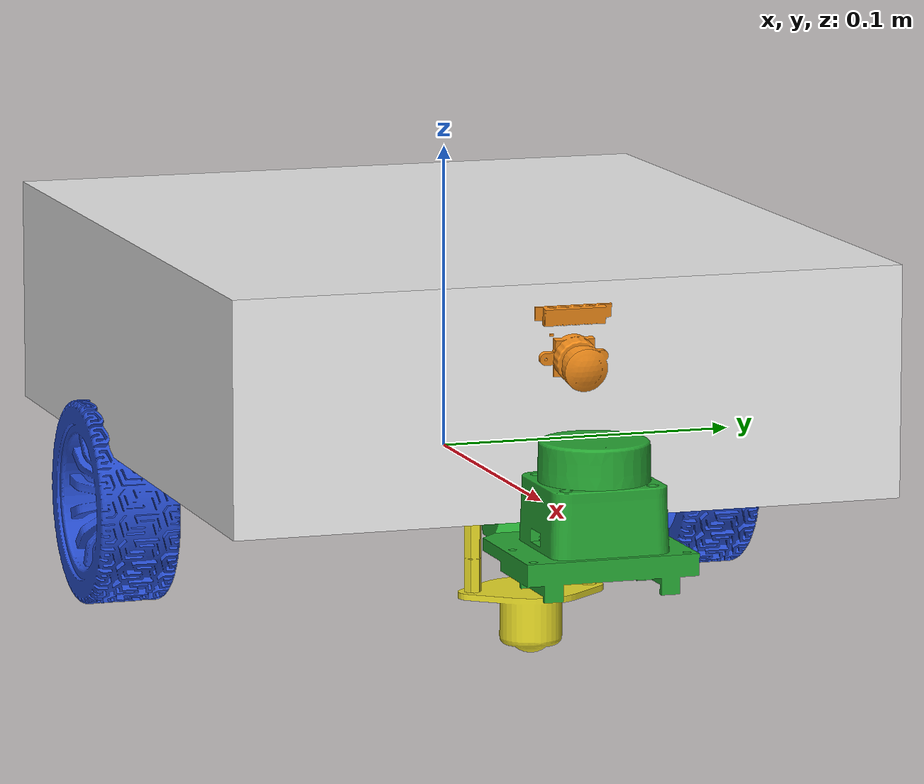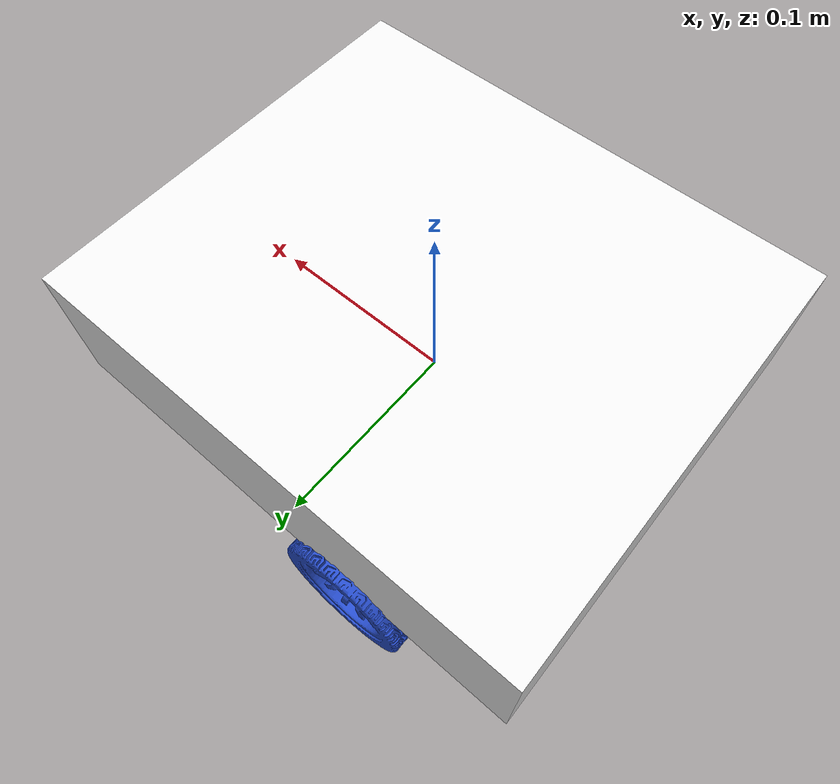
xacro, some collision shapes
<?xml version="1.0"?>
<robot xmlns:xacro="http://www.ros.org/wiki/xacro"  name="sevillabot">

    <xacro:arg name="use_ros2_control" default="true" />
    <xacro:arg name="sim_mode" default="false"/>

    <!-- PROPERTIES -->
    <xacro:include filename="properties.xacro" />

    <!-- CORE ROBOT DESCRIPTION -->
    <xacro:include filename="robot_core.xacro" />

    <!-- toggle between ROS2 CONTROL -->
    <xacro:if value ="$(arg use_ros2_control)">
        <xacro:include filename="ros2_control.xacro" />
    </xacro:if>

    <!-- and GAZEBO -->
    <xacro:unless value ="$(arg use_ros2_control)">
        <xacro:include filename="gazebo_control.xacro" />
    </xacro:unless>

    <!-- LIDAR -->
    <xacro:include filename="lidar.xacro" />

    <!-- CAMERA -->
    <xacro:include filename="camera.xacro" />

</robot>

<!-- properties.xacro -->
<robot xmlns:xacro="http://www.ros.org/wiki/xacro" >

    <!-- box -->
    <xacro:property name="box_x" value="0.26"/> <!-- box length in m -->
    <xacro:property name="box_y" value="0.22"/> <!-- box width in m -->
    <xacro:property name="box_z" value="0.075"/> <!-- box height in m -->
    <xacro:property name="box_x_off" value="0.0"/> <!-- box x-offset in m -->
    <xacro:property name="box_z_off" value="0.0"/> <!-- box z-offset in m -->
    <xacro:property name="box_mass" value="1.7578"/> <!-- box mass in Kg -->

    <!-- wheels -->
    <xacro:property name="W_x" value="0.04"/> <!-- wheel axis x-offset from centre in m -->
    <xacro:property name="W_z" value="0.02"/> <!-- wheel axis z-offset from bottom in m -->
    <xacro:property name="W_y" value="0.102"/> <!-- wheel half separation in m -->
    <xacro:property name="W_D" value="0.065"/> <!-- wheel diameter in m -->
    <xacro:property name="W_h" value="0.026"/> <!-- wheel width in m -->
    <xacro:property name="W_mass" value="0.0454"/> <!-- wheel mass in Kg -->

    <!-- caster -->
    <xacro:property name="c_x" value="0.030"/> <!-- caster centre x-offset from edge in m -->
    <xacro:property name="c_z" value="0.056"/> <!-- caster contact z-offset from bottom in m -->
    <xacro:property name="c_x_off" value="0.090"/> <!-- caster mesh x-offset in m -->
    <xacro:property name="c_z_off" value="0.043"/> <!-- caster mesh z-offset in m -->
    <xacro:property name="c_D" value="0.016"/> <!-- caster diameter in m -->
    <xacro:property name="c_mass" value="0.0471"/> <!-- caster mass in Kg -->

    <!-- motors -->
    <xacro:property name="m_y" value="0.04"/> <!-- motor y-offset from centre in m -->
    <xacro:property name="m_h" value="0.06"/> <!-- motor length in m -->
    <xacro:property name="m_D" value="0.02"/> <!-- motor body diameter in m -->
    <xacro:property name="m_l" value="0.009"/> <!-- motor coupling length in m -->
    <xacro:property name="m_d" value="0.011"/> <!-- motor coupling diameter in m -->
    <xacro:property name="m_mass" value="0.05"/> <!-- motor mass in Kg -->

    <!--lidar -->
    <xacro:property name="L_x" value="0.109"/> <!-- Lidar x-offset in m -->
    <xacro:property name="L_z" value="-0.004"/> <!-- Lidar z-offset in m -->
    <xacro:property name="L_x_off" value="0.04"/> <!-- Lidar x-offset in m -->
    <xacro:property name="L_z_off" value="0.022"/> <!-- Lidar z-offset in m -->
    <xacro:property name="L_D" value="0.038"/> <!-- Lidar head diameter in m -->
    <xacro:property name="L_h" value="0.013"/> <!-- Lidar unit height in m -->
    <xacro:property name="L_mass" value="0.0715"/> <!-- Lidar mass in Kg -->

    <!--camera -->
    <xacro:property name="cam_x" value="0.127"/> <!-- Camera x-offset in m -->
    <xacro:property name="cam_z" value="0.05216"/> <!-- Camera z-offset in m -->
    <xacro:property name="cam_angle" value="${10*pi/180}"/> <!-- Camera down angle in radians -->
    <xacro:property name="cam_dx" value="0.006"/> <!-- Camera box thickness in m -->
    <xacro:property name="cam_dy" value="0.03"/> <!-- Camera box width in m -->
    <xacro:property name="cam_dz" value="0.02"/> <!-- Camera box height in m -->
    <xacro:property name="cam_mass" value="0.002"/> <!-- Camera mass in Kg -->

</robot>

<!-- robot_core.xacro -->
<robot xmlns:xacro="http://www.ros.org/wiki/xacro">

    <!-- MATERIALS -->
    <!-- white black light_gray dark_gray green blue red yellow orange -->

    <xacro:include filename="materials.xacro" />

    <!-- INERTIAL MACROS -->

    <xacro:include filename="inertial_macros.xacro" />

    <!-- BASE LINK -->

    <link name="base_link">
    </link>length

    <!-- BASE_FOOTPRINT LINK -->

    <joint name="base_footprint_joint" type="fixed">
        <parent link="base_link" />
        <child link="base_footprint" />
        <origin xyz="0 0 0" rpy="0 0 0" />
    </joint>

    <link name="base_footprint">
    </link>

    <!-- CHASSIS LINK -->

    <joint name="chassis_joint" type="fixed">
        <parent link="base_link" />
        <child link="chassis_link" />
        <origin xyz="0 0 0" />
    </joint>

    <link name="chassis_link">
        <visual>
            <geometry>
            	<mesh filename="file://$(find sevillabot)/meshes/ASSY_sevillabot_base.stl" scale="1.0e-3 1.0e-3 1.0e-3"/>
            </geometry>
            <origin xyz="${box_z_off} 0 ${box_z_off}" rpy="0 0 0"/>
            <material name="white" />
        </visual>

        <collision>
            <geometry>
                <box size="${box_x} ${box_y} ${box_z}" />
            </geometry>
            <origin xyz="0 0 ${box_z/2}" />
        </collision>

        <xacro:inertial_box mass="${box_mass}" x="${box_x}" y="${box_y}" z="${box_z}">
            <origin xyz="0 0 0" rpy="0 0 0" />
        </xacro:inertial_box>

    </link>

    <gazebo reference="chassis_link">
        <material>Gazebo/White</material>
    </gazebo>

    <!-- LEFT WHEEL LINK -->

    <joint name="left_wheel_joint" type="continuous">
        <parent link="base_link" />
        <child link="left_wheel_link" />
        <origin xyz="-${W_x} ${W_y} -${W_z}" rpy="0 0 ${pi/2}" />
        <axis xyz="1 0 0" />
    </joint>

    <link name="left_wheel_link">
        <visual>
            <geometry>
                <mesh filename="file://$(find sevillabot)/meshes/ASSY_Wheel.stl" scale="1.0e-3 1.0e-3 1.0e-3"/>
            </geometry>
            <material name="blue" />
        </visual>

        <collision>
            <geometry>
                <sphere radius="${W_D/2}" />
            </geometry>
        </collision>

        <xacro:inertial_cylinder mass="${W_mass}" radius="${W_D/2}" length="${W_h}">
            <origin xyz="0 0 0" rpy="${pi/2} 0 ${pi/2}" />
        </xacro:inertial_cylinder>

    </link>

    <gazebo reference="left_wheel_link">
        <material>Gazebo/Blue</material>
    </gazebo>

    <!-- RIGHT WHEEL LINK -->

    <joint name="right_wheel_joint" type="continuous">
        <parent link="base_link" />
        <child link="right_wheel_link" />
        <origin xyz="-${W_x} -${W_y} -${W_z}" rpy="0 0 -${pi/2}" />
        <axis xyz="-1 0 0" />
    </joint>

    <link name="right_wheel_link">
        <visual>
            <geometry>
                <!-- cylinder radius="${W_D/2}" length="${W_h}" / -->
                <mesh filename="file://$(find sevillabot)/meshes/ASSY_Wheel.stl" scale="1.0e-3 1.0e-3 1.0e-3"/>
            </geometry>
            <material name="blue" />
        </visual>

        <collision>
            <geometry>
                <sphere radius="${W_D/2}" />
            </geometry>
        </collision>

        <xacro:inertial_cylinder mass="${W_mass}" radius="${W_D/2}" length="${W_h}">
            <origin xyz="0 0 0" rpy="${pi/2} 0 ${pi/2}" />
        </xacro:inertial_cylinder>

    </link>

    <gazebo reference="right_wheel_link">
        <material>Gazebo/Blue</material>
    </gazebo>

    <!-- CASTER WHEEL LINK -->

    <joint name="caster_wheel_joint" type="fixed">
        <parent link="chassis_link" />
        <child link="caster_wheel_link" />
        <origin xyz="${c_x_off} 0 ${-c_z_off}" rpy = "0 0 0"  />
    </joint>

    <link name="caster_wheel_link">
        <visual>
            <geometry>
                <!-- sphere radius="${c_D/2}" / -->
                <mesh filename="file://$(find sevillabot)/meshes/ADDON_caster_wheel.stl" scale="1.0e-3 1.0e-3 1.0e-3"/>
            </geometry>
            <origin xyz="0 0 0" rpy = "0 0 0"  />
            <material name="yellow" />
        </visual>

        <collision>
            <origin xyz="0 0 0" rpy="0 0 0" />
            <geometry>
                <sphere radius="${c_D/2}" />
            </geometry>
        </collision>

        <xacro:inertial_sphere mass="${c_mass}" radius="${c_D/2}">
            <origin xyz="0 0 0" rpy="0 0 0" />
        </xacro:inertial_sphere>

    </link>

    <gazebo reference="caster_wheel_link">
        <material>Gazebo/Yellow</material>
        <mu1 value="0.0001" />
        <mu2 value="0.0001" />
    </gazebo>

</robot>

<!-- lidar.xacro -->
<robot xmlns:xacro="http://www.ros.org/wiki/xacro" >

    <joint name="lidar_joint" type="fixed">
        <parent link="chassis_link"/>
        <child link="lidar_link"/>
        <origin xyz="${L_x+L_x_off} 0 ${L_z+L_z_off}" rpy="0.0 0.0 0.0"/>
    </joint>

    <link name="lidar_link">
        <visual>
            <geometry>
                <mesh filename="file://$(find sevillabot)/meshes/ADDON_Lidar_assy.stl" scale="1.0e-3 1.0e-3 1.0e-3"/>
            </geometry>
            <origin xyz="${-L_x_off} 0 ${-L_z_off}" rpy="0.0 0.0 0.0"/>
            <material name="green" />
        </visual>

        <collision>
            <geometry>
                <cylinder radius="${L_D/2}" length="${L_h}" />
            </geometry>
            <origin xyz="0 0 0" rpy="0 0 0" />
        </collision>

        <xacro:inertial_cylinder mass="${L_mass}" radius="${L_D/2}" length="${L_h}">
            <origin xyz="0 0 0" rpy="0 0 0" />
        </xacro:inertial_cylinder>

    </link>

    <gazebo reference="lidar_link">

        <material>Gazebo/Green</material>

        <sensor name="lidar" type="ray">
            <pose> 0 0 0 0 0 0 </pose>
            <visualize> true </visualize> <!-- visualize laser rays -->
            <update_rate>10</update_rate>
            <ray>
                <scan>
                    <horizontal>
                        <samples>360</samples>
                        <resolution>1</resolution>
                        <min_angle>-3.14</min_angle>
                        <max_angle>3.14</max_angle>
                    </horizontal>
                </scan>
                <range>
                    <min>0.1</min>
                    <max>12</max>
                    <resolution>0.01</resolution>
                </range>
            </ray>
            <plugin name="lidar_controller" filename="libgazebo_ros_ray_sensor.so">
                <ros>
                    <argument>~/out:=scan</argument> <!-- topic -->
                </ros>
                <output_type>sensor_msgs/LaserScan</output_type>
                <frame_name>lidar_link</frame_name>
            </plugin>
        </sensor>

    </gazebo>

</robot>

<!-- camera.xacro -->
<robot xmlns:xacro="http://www.ros.org/wiki/xacro" >

    <joint name="camera_joint" type="fixed">
        <parent link="chassis_link"/>
        <child link="camera_link"/>
        <origin xyz="${cam_x} 0 ${cam_z}" rpy="0.0 ${cam_angle} 0.0"/>
    </joint>

    <link name="camera_link">
        <visual>
            <geometry>
                <mesh filename="file://$(find sevillabot)/meshes/ADDON_front_camera.stl" scale="1.0e-3 1.0e-3 1.0e-3"/>
            </geometry>
            <origin xyz="0 0 0" rpy="0.0 0.0 0.0"/>
            <material name="orange" />
        </visual>

    </link>

    <joint name="camera_optical_joint" type="fixed">
        <parent link="camera_link"/>
        <child link="camera_link_optical"/>
        <origin xyz="0 0 0" rpy="${-pi/2} 0 ${-pi/2}"/>
    </joint>

    <link name="camera_link_optical"></link>

    <gazebo reference="camera_link">

        <material>Gazebo/Orange</material>

        <sensor name="camera" type="camera">
            <pose> 0 0 0 0 0 0 </pose>
            <visualize> true </visualize>
            <update_rate>10</update_rate>
            <camera>
                <horizontal_fov>5.671</horizontal_fov> <!-- Sensor Omnivision 5647 angle 160deg -->
                <image>
                    <format>R8G8B8</format>
                    <width>640</width>
                    <height>480</height>
                </image>
                <clip>
                    <near>0.05</near>
                    <far>8.0</far>
                </clip>
            </camera>

            <plugin name="camera_controller" filename="libgazebo_ros_camera.so">
                <frame_name>camera_link_optical</frame_name>
            </plugin>
        </sensor>

    </gazebo>

</robot>
